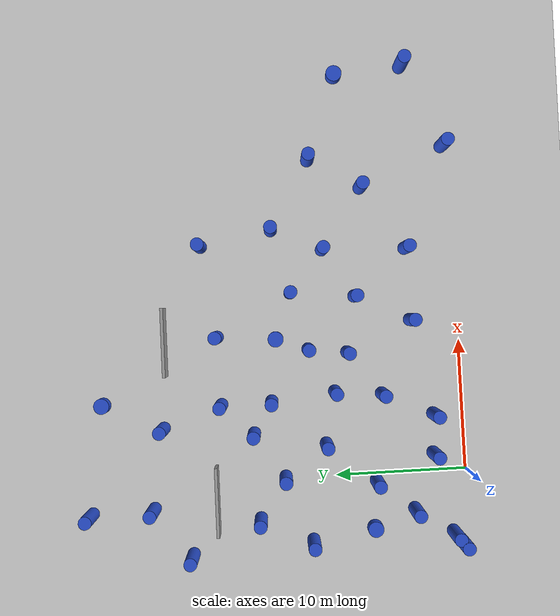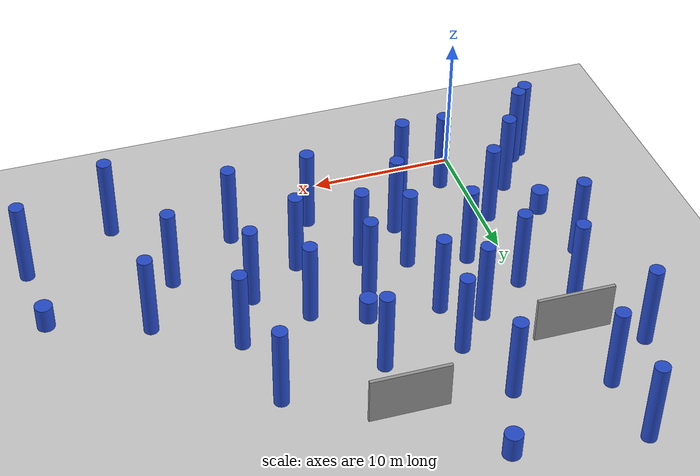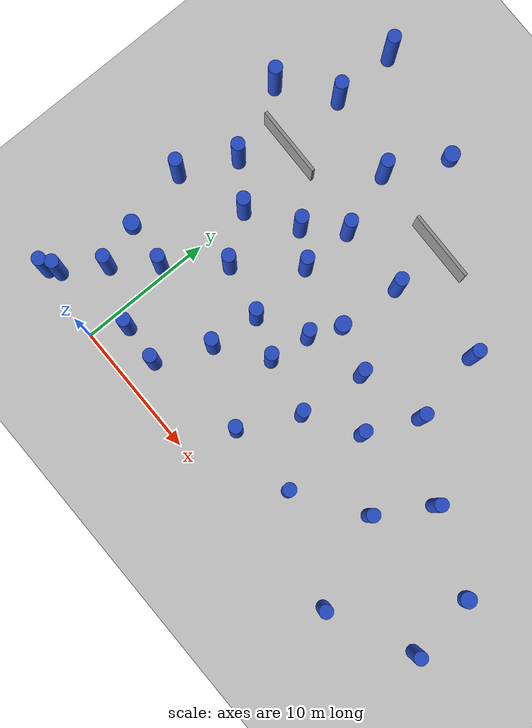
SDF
<sdf version="1.7">
 <world name="default">
  <model name="ground_plane">
   <static>1</static>
   <link name="link">
    <collision name="collision">
     <geometry><plane><normal>0 0 1</normal><size>100 100</size></plane></geometry>
     <surface><friction><ode><mu>100</mu><mu2>50</mu2></ode></friction></surface>
    </collision>
    <visual name="visual">
     <cast_shadows>0</cast_shadows>
     <geometry><plane><normal>0 0 1</normal><size>100 100</size></plane></geometry>
     <material>
      <script><uri>file://media/materials/scripts/gazebo.material</uri><name>Gazebo/Grey</name></script>
     </material>
    </visual>
   </link>
  </model>
  <model name="unit_cylinder_1">
   <static>1</static>
   <pose>30.8945 8.63353 0.9 0 -0 0.001073</pose>
   <link name="link">
    <inertial>
     <mass>1</mass>
     <inertia><ixx>0.145833</ixx><ixy>0</ixy><ixz>0</ixz><iyy>0.145833</iyy><iyz>0</iyz><izz>0.125</izz></inertia>
    </inertial>
    <collision name="collision">
     <geometry><cylinder><radius>0.6</radius><length>1.8</length></cylinder></geometry>
     <surface><contact><collide_without_contact>1</collide_without_contact></contact></surface>
    </collision>
    <visual name="visual">
     <geometry><cylinder><radius>0.6</radius><length>1.8</length></cylinder></geometry>
     <material>
      <script><name>Gazebo/Blue</name><uri>file://media/materials/scripts/gazebo.material</uri></script>
     </material>
    </visual>
    <gravity>0</gravity>
   </link>
  </model>
  <model name="unit_box_0_0_clone_0_clone_clone_0_clone_clone_clone_clone_clone_clone_0">
   <static>1</static>
   <pose>-1.35623 19.251 1.66667 -2e-06 0.000226 1.55672</pose>
   <link name="link">
    <inertial>
     <mass>1</mass>
     <inertia>
      <ixx>0.166667</ixx>
      <ixy>0</ixy>
      <ixz>0</ixz>
      <iyy>0.166667</iyy>
      <iyz>0</iyz>
      <izz>0.166667</izz>
     </inertia>
    </inertial>
    <collision name="collision">
     <geometry><box><size>0.237691 5.28913 3.33454</size></box></geometry>
     <surface><contact><collide_without_contact>1</collide_without_contact></contact></surface>
    </collision>
    <visual name="visual">
     <geometry><box><size>0.237691 5.28913 3.33454</size></box></geometry>
     <material>
      <script><name>Gazebo/Grey</name><uri>file://media/materials/scripts/gazebo.material</uri></script>
     </material>
    </visual>
    <gravity>0</gravity>
   </link>
  </model>
  <model name="unit_box_0_0_clone_0_clone_clone_0_clone_clone_clone_clone_clone_clone_2">
   <static>1</static>
   <pose>10.9902 22.7223 1.66667 -2e-06 0.000226 1.55672</pose>
   <link name="link">
    <inertial>
     <mass>1</mass>
     <inertia>
      <ixx>0.166667</ixx>
      <ixy>0</ixy>
      <ixz>0</ixz>
      <iyy>0.166667</iyy>
      <iyz>0</iyz>
      <izz>0.166667</izz>
     </inertia>
    </inertial>
    <collision name="collision">
     <geometry><box><size>0.237691 5.28913 3.33454</size></box></geometry>
     <surface><contact><collide_without_contact>1</collide_without_contact></contact></surface>
    </collision>
    <visual name="visual">
     <geometry><box><size>0.237691 5.28913 3.33454</size></box></geometry>
     <material>
      <script><name>Gazebo/Grey</name><uri>file://media/materials/scripts/gazebo.material</uri></script>
     </material>
    </visual>
    <gravity>0</gravity>
   </link>
  </model>
  <model name="unit_cylinder_0_clone_0">
   <static>1</static>
   <pose>19.2061 14.1082 3 0 -0 0.001073</pose>
   <link name="link">
    <inertial>
     <mass>1</mass>
     <inertia><ixx>0.145833</ixx><ixy>0</ixy><ixz>0</ixz><iyy>0.145833</iyy><iyz>0</iyz><izz>0.125</izz></inertia>
    </inertial>
    <collision name="collision">
     <geometry><cylinder><radius>0.5</radius><length>6</length></cylinder></geometry>
     <surface><contact><collide_without_contact>1</collide_without_contact></contact></surface>
    </collision>
    <visual name="visual">
     <geometry><cylinder><radius>0.5</radius><length>6</length></cylinder></geometry>
     <material>
      <script><name>Gazebo/Blue</name><uri>file://media/materials/scripts/gazebo.material</uri></script>
     </material>
    </visual>
    <gravity>0</gravity>
   </link>
  </model>
  <model name="unit_cylinder_0_clone_5">
   <static>1</static>
   <pose>17.29 3.83892 3 0 -0 0.001073</pose>
   <link name="link">
    <inertial>
     <mass>1</mass>
     <inertia><ixx>0.145833</ixx><ixy>0</ixy><ixz>0</ixz><iyy>0.145833</iyy><iyz>0</iyz><izz>0.125</izz></inertia>
    </inertial>
    <collision name="collision">
     <geometry><cylinder><radius>0.5</radius><length>6</length></cylinder></geometry>
     <surface><contact><collide_without_contact>1</collide_without_contact></contact></surface>
    </collision>
    <visual name="visual">
     <geometry><cylinder><radius>0.5</radius><length>6</length></cylinder></geometry>
     <material>
      <script><name>Gazebo/Blue</name><uri>file://media/materials/scripts/gazebo.material</uri></script>
     </material>
    </visual>
    <gravity>0</gravity>
   </link>
  </model>
  <model name="unit_cylinder_0_clone_15">
   <static>1</static>
   <pose>24.4702 11 3 0 -0 0.001073</pose>
   <link name="link">
    <inertial>
     <mass>1</mass>
     <inertia><ixx>0.145833</ixx><ixy>0</ixy><ixz>0</ixz><iyy>0.145833</iyy><iyz>0</iyz><izz>0.125</izz></inertia>
    </inertial>
    <collision name="collision">
     <geometry><cylinder><radius>0.5</radius><length>6</length></cylinder></geometry>
     <surface><contact><collide_without_contact>1</collide_without_contact></contact></surface>
    </collision>
    <visual name="visual">
     <geometry><cylinder><radius>0.5</radius><length>6</length></cylinder></geometry>
     <material>
      <script><name>Gazebo/Blue</name><uri>file://media/materials/scripts/gazebo.material</uri></script>
     </material>
    </visual>
    <gravity>0</gravity>
   </link>
  </model>
  <model name="unit_cylinder_0_clone_53">
   <static>1</static>
   <pose>25.011 0.609466 3 0 -0 0.001073</pose>
   <link name="link">
    <inertial>
     <mass>1</mass>
     <inertia><ixx>0.145833</ixx><ixy>0</ixy><ixz>0</ixz><iyy>0.145833</iyy><iyz>0</iyz><izz>0.125</izz></inertia>
    </inertial>
    <collision name="collision">
     <geometry><cylinder><radius>0.5</radius><length>6</length></cylinder></geometry>
     <surface><contact><collide_without_contact>1</collide_without_contact></contact></surface>
    </collision>
    <visual name="visual">
     <geometry><cylinder><radius>0.5</radius><length>6</length></cylinder></geometry>
     <material>
      <script><name>Gazebo/Blue</name><uri>file://media/materials/scripts/gazebo.material</uri></script>
     </material>
    </visual>
    <gravity>0</gravity>
   </link>
  </model>
  <model name="unit_cylinder_0_clone_56">
   <static>1</static>
   <pose>6.1738 6.18159 3 0 -0 0.001073</pose>
   <link name="link">
    <inertial>
     <mass>1</mass>
     <inertia><ixx>0.145833</ixx><ixy>0</ixy><ixz>0</ixz><iyy>0.145833</iyy><iyz>0</iyz><izz>0.125</izz></inertia>
    </inertial>
    <collision name="collision">
     <geometry><cylinder><radius>0.5</radius><length>6</length></cylinder></geometry>
     <surface><contact><collide_without_contact>1</collide_without_contact></contact></surface>
    </collision>
    <visual name="visual">
     <geometry><cylinder><radius>0.5</radius><length>6</length></cylinder></geometry>
     <material>
      <script><name>Gazebo/Blue</name><uri>file://media/materials/scripts/gazebo.material</uri></script>
     </material>
    </visual>
    <gravity>0</gravity>
   </link>
  </model>
  <model name="unit_cylinder_1_clone_3">
   <static>1</static>
   <pose>10.7828 14.1577 0.9 0 -0 0.001073</pose>
   <link name="link">
    <inertial>
     <mass>1</mass>
     <inertia><ixx>0.145833</ixx><ixy>0</ixy><ixz>0</ixz><iyy>0.145833</iyy><iyz>0</iyz><izz>0.125</izz></inertia>
    </inertial>
    <collision name="collision">
     <geometry><cylinder><radius>0.6</radius><length>1.8</length></cylinder></geometry>
     <surface><contact><collide_without_contact>1</collide_without_contact></contact></surface>
    </collision>
    <visual name="visual">
     <geometry><cylinder><radius>0.6</radius><length>1.8</length></cylinder></geometry>
     <material>
      <script><name>Gazebo/Blue</name><uri>file://media/materials/scripts/gazebo.material</uri></script>
     </material>
    </visual>
    <gravity>0</gravity>
   </link>
  </model>
  <model name="unit_cylinder_1_clone_4">
   <static>1</static>
   <pose>6.362 27.7652 0.9 0 -0 0.001073</pose>
   <link name="link">
    <inertial>
     <mass>1</mass>
     <inertia><ixx>0.145833</ixx><ixy>0</ixy><ixz>0</ixz><iyy>0.145833</iyy><iyz>0</iyz><izz>0.125</izz></inertia>
    </inertial>
    <collision name="collision">
     <geometry><cylinder><radius>0.6</radius><length>1.8</length></cylinder></geometry>
     <surface><contact><collide_without_contact>1</collide_without_contact></contact></surface>
    </collision>
    <visual name="visual">
     <geometry><cylinder><radius>0.6</radius><length>1.8</length></cylinder></geometry>
     <material>
      <script><name>Gazebo/Blue</name><uri>file://media/materials/scripts/gazebo.material</uri></script>
     </material>
    </visual>
    <gravity>0</gravity>
   </link>
  </model>
  <model name="unit_cylinder_0_clone_3_clone">
   <static>1</static>
   <pose>-5.44686 0.623967 3 0 -0 0.001073</pose>
   <link name="link">
    <inertial>
     <mass>1</mass>
     <inertia><ixx>0.145833</ixx><ixy>0</ixy><ixz>0</ixz><iyy>0.145833</iyy><iyz>0</iyz><izz>0.125</izz></inertia>
    </inertial>
    <collision name="collision">
     <geometry><cylinder><radius>0.5</radius><length>6</length></cylinder></geometry>
     <surface><contact><collide_without_contact>1</collide_without_contact></contact></surface>
    </collision>
    <visual name="visual">
     <geometry><cylinder><radius>0.5</radius><length>6</length></cylinder></geometry>
     <material>
      <script><name>Gazebo/Blue</name><uri>file://media/materials/scripts/gazebo.material</uri></script>
     </material>
    </visual>
    <gravity>0</gravity>
   </link>
  </model>
  <model name="unit_cylinder_0_clone_3_clone_0">
   <static>1</static>
   <pose>-0.521379 6.93964 3 0 -0 0.001073</pose>
   <link name="link">
    <inertial>
     <mass>1</mass>
     <inertia><ixx>0.145833</ixx><ixy>0</ixy><ixz>0</ixz><iyy>0.145833</iyy><iyz>0</iyz><izz>0.125</izz></inertia>
    </inertial>
    <collision name="collision">
     <geometry><cylinder><radius>0.5</radius><length>6</length></cylinder></geometry>
     <surface><contact><collide_without_contact>1</collide_without_contact></contact></surface>
    </collision>
    <visual name="visual">
     <geometry><cylinder><radius>0.5</radius><length>6</length></cylinder></geometry>
     <material>
      <script><name>Gazebo/Blue</name><uri>file://media/materials/scripts/gazebo.material</uri></script>
     </material>
    </visual>
    <gravity>0</gravity>
   </link>
  </model>
  <model name="unit_cylinder_0_clone_3_clone_5">
   <static>1</static>
   <pose>0.129351 13.9177 3 0 -0 0.001073</pose>
   <link name="link">
    <inertial>
     <mass>1</mass>
     <inertia><ixx>0.145833</ixx><ixy>0</ixy><ixz>0</ixz><iyy>0.145833</iyy><iyz>0</iyz><izz>0.125</izz></inertia>
    </inertial>
    <collision name="collision">
     <geometry><cylinder><radius>0.5</radius><length>6</length></cylinder></geometry>
     <surface><contact><collide_without_contact>1</collide_without_contact></contact></surface>
    </collision>
    <visual name="visual">
     <geometry><cylinder><radius>0.5</radius><length>6</length></cylinder></geometry>
     <material>
      <script><name>Gazebo/Blue</name><uri>file://media/materials/scripts/gazebo.material</uri></script>
     </material>
    </visual>
    <gravity>0</gravity>
   </link>
  </model>
  <model name="unit_cylinder_0_clone_3_clone_7">
   <static>1</static>
   <pose>17.5051 10.2438 3 0 -0 0.001073</pose>
   <link name="link">
    <inertial>
     <mass>1</mass>
     <inertia><ixx>0.145833</ixx><ixy>0</ixy><ixz>0</ixz><iyy>0.145833</iyy><iyz>0</iyz><izz>0.125</izz></inertia>
    </inertial>
    <collision name="collision">
     <geometry><cylinder><radius>0.5</radius><length>6</length></cylinder></geometry>
     <surface><contact><collide_without_contact>1</collide_without_contact></contact></surface>
    </collision>
    <visual name="visual">
     <geometry><cylinder><radius>0.5</radius><length>6</length></cylinder></geometry>
     <material>
      <script><name>Gazebo/Blue</name><uri>file://media/materials/scripts/gazebo.material</uri></script>
     </material>
    </visual>
    <gravity>0</gravity>
   </link>
  </model>
  <model name="unit_cylinder_0_clone_3_clone_8">
   <static>1</static>
   <pose>18.2052 19.6027 3 0 -0 0.001073</pose>
   <link name="link">
    <inertial>
     <mass>1</mass>
     <inertia><ixx>0.145833</ixx><ixy>0</ixy><ixz>0</ixz><iyy>0.145833</iyy><iyz>0</iyz><izz>0.125</izz></inertia>
    </inertial>
    <collision name="collision">
     <geometry><cylinder><radius>0.5</radius><length>6</length></cylinder></geometry>
     <surface><contact><collide_without_contact>1</collide_without_contact></contact></surface>
    </collision>
    <visual name="visual">
     <geometry><cylinder><radius>0.5</radius><length>6</length></cylinder></geometry>
     <material>
      <script><name>Gazebo/Blue</name><uri>file://media/materials/scripts/gazebo.material</uri></script>
     </material>
    </visual>
    <gravity>0</gravity>
   </link>
  </model>
  <model name="unit_cylinder_0_clone_3_clone_12">
   <static>1</static>
   <pose>11.172 18.673 3 0 -0 0.001073</pose>
   <link name="link">
    <inertial>
     <mass>1</mass>
     <inertia><ixx>0.145833</ixx><ixy>0</ixy><ixz>0</ixz><iyy>0.145833</iyy><iyz>0</iyz><izz>0.125</izz></inertia>
    </inertial>
    <collision name="collision">
     <geometry><cylinder><radius>0.5</radius><length>6</length></cylinder></geometry>
     <surface><contact><collide_without_contact>1</collide_without_contact></contact></surface>
    </collision>
    <visual name="visual">
     <geometry><cylinder><radius>0.5</radius><length>6</length></cylinder></geometry>
     <material>
      <script><name>Gazebo/Blue</name><uri>file://media/materials/scripts/gazebo.material</uri></script>
     </material>
    </visual>
    <gravity>0</gravity>
   </link>
  </model>
  <model name="unit_cylinder_0_clone_3_clone_13">
   <static>1</static>
   <pose>-1.8244 24.1865 3 0 -0 0.001073</pose>
   <link name="link">
    <inertial>
     <mass>1</mass>
     <inertia><ixx>0.145833</ixx><ixy>0</ixy><ixz>0</ixz><iyy>0.145833</iyy><iyz>0</iyz><izz>0.125</izz></inertia>
    </inertial>
    <collision name="collision">
     <geometry><cylinder><radius>0.5</radius><length>6</length></cylinder></geometry>
     <surface><contact><collide_without_contact>1</collide_without_contact></contact></surface>
    </collision>
    <visual name="visual">
     <geometry><cylinder><radius>0.5</radius><length>6</length></cylinder></geometry>
     <material>
      <script><name>Gazebo/Blue</name><uri>file://media/materials/scripts/gazebo.material</uri></script>
     </material>
    </visual>
    <gravity>0</gravity>
   </link>
  </model>
  <model name="unit_cylinder_1_clone_19_clone_1">
   <static>1</static>
   <pose>-4.17583 7.23667 0.9 0 -0 0.001073</pose>
   <link name="link">
    <inertial>
     <mass>1</mass>
     <inertia><ixx>0.145833</ixx><ixy>0</ixy><ixz>0</ixz><iyy>0.145833</iyy><iyz>0</iyz><izz>0.125</izz></inertia>
    </inertial>
    <collision name="collision">
     <geometry><cylinder><radius>0.6</radius><length>1.8</length></cylinder></geometry>
     <surface><contact><collide_without_contact>1</collide_without_contact></contact></surface>
    </collision>
    <visual name="visual">
     <geometry><cylinder><radius>0.6</radius><length>1.8</length></cylinder></geometry>
     <material>
      <script><name>Gazebo/Blue</name><uri>file://media/materials/scripts/gazebo.material</uri></script>
     </material>
    </visual>
    <gravity>0</gravity>
   </link>
  </model>
  <model name="unit_cylinder_0_clone_3_clone_clone_2">
   <static>1</static>
   <pose>9.50136 8.69754 3 0 -0 0.001073</pose>
   <link name="link">
    <inertial>
     <mass>1</mass>
     <inertia><ixx>0.145833</ixx><ixy>0</ixy><ixz>0</ixz><iyy>0.145833</iyy><iyz>0</iyz><izz>0.125</izz></inertia>
    </inertial>
    <collision name="collision">
     <geometry><cylinder><radius>0.5</radius><length>6</length></cylinder></geometry>
     <surface><contact><collide_without_contact>1</collide_without_contact></contact></surface>
    </collision>
    <visual name="visual">
     <geometry><cylinder><radius>0.5</radius><length>6</length></cylinder></geometry>
     <material>
      <script><name>Gazebo/Blue</name><uri>file://media/materials/scripts/gazebo.material</uri></script>
     </material>
    </visual>
    <gravity>0</gravity>
   </link>
  </model>
  <model name="unit_cylinder_0_clone_3_clone_clone_3">
   <static>1</static>
   <pose>6.0049 14.709 3 0 -0 0.001073</pose>
   <link name="link">
    <inertial>
     <mass>1</mass>
     <inertia><ixx>0.145833</ixx><ixy>0</ixy><ixz>0</ixz><iyy>0.145833</iyy><iyz>0</iyz><izz>0.125</izz></inertia>
    </inertial>
    <collision name="collision">
     <geometry><cylinder><radius>0.5</radius><length>6</length></cylinder></geometry>
     <surface><contact><collide_without_contact>1</collide_without_contact></contact></surface>
    </collision>
    <visual name="visual">
     <geometry><cylinder><radius>0.5</radius><length>6</length></cylinder></geometry>
     <material>
      <script><name>Gazebo/Blue</name><uri>file://media/materials/scripts/gazebo.material</uri></script>
     </material>
    </visual>
    <gravity>0</gravity>
   </link>
  </model>
  <model name="unit_cylinder_0_clone_3_clone_clone_6">
   <static>1</static>
   <pose>4.41585 2.29177 3 0 -0 0.001073</pose>
   <link name="link">
    <inertial>
     <mass>1</mass>
     <inertia><ixx>0.145833</ixx><ixy>0</ixy><ixz>0</ixz><iyy>0.145833</iyy><iyz>0</iyz><izz>0.125</izz></inertia>
    </inertial>
    <collision name="collision">
     <geometry><cylinder><radius>0.5</radius><length>6</length></cylinder></geometry>
     <surface><contact><collide_without_contact>1</collide_without_contact></contact></surface>
    </collision>
    <visual name="visual">
     <geometry><cylinder><radius>0.5</radius><length>6</length></cylinder></geometry>
     <material>
      <script><name>Gazebo/Blue</name><uri>file://media/materials/scripts/gazebo.material</uri></script>
     </material>
    </visual>
    <gravity>0</gravity>
   </link>
  </model>
  <model name="unit_cylinder_0_clone_3_clone_clone_7">
   <static>1</static>
   <pose>-2.84647 4.08185 3 0 -0 0.001073</pose>
   <link name="link">
    <inertial>
     <mass>1</mass>
     <inertia><ixx>0.145833</ixx><ixy>0</ixy><ixz>0</ixz><iyy>0.145833</iyy><iyz>0</iyz><izz>0.125</izz></inertia>
    </inertial>
    <collision name="collision">
     <geometry><cylinder><radius>0.5</radius><length>6</length></cylinder></geometry>
     <surface><contact><collide_without_contact>1</collide_without_contact></contact></surface>
    </collision>
    <visual name="visual">
     <geometry><cylinder><radius>0.5</radius><length>6</length></cylinder></geometry>
     <material>
      <script><name>Gazebo/Blue</name><uri>file://media/materials/scripts/gazebo.material</uri></script>
     </material>
    </visual>
    <gravity>0</gravity>
   </link>
  </model>
  <model name="unit_cylinder_0_clone_3_clone_clone_8">
   <static>1</static>
   <pose>2.52709 10.6665 3 0 -0 0.001073</pose>
   <link name="link">
    <inertial>
     <mass>1</mass>
     <inertia><ixx>0.145833</ixx><ixy>0</ixy><ixz>0</ixz><iyy>0.145833</iyy><iyz>0</iyz><izz>0.125</izz></inertia>
    </inertial>
    <collision name="collision">
     <geometry><cylinder><radius>0.5</radius><length>6</length></cylinder></geometry>
     <surface><contact><collide_without_contact>1</collide_without_contact></contact></surface>
    </collision>
    <visual name="visual">
     <geometry><cylinder><radius>0.5</radius><length>6</length></cylinder></geometry>
     <material>
      <script><name>Gazebo/Blue</name><uri>file://media/materials/scripts/gazebo.material</uri></script>
     </material>
    </visual>
    <gravity>0</gravity>
   </link>
  </model>
  <model name="unit_cylinder_0_clone_3_clone_clone_9">
   <static>1</static>
   <pose>-4.87347 12.0297 3 0 -0 0.001073</pose>
   <link name="link">
    <inertial>
     <mass>1</mass>
     <inertia><ixx>0.145833</ixx><ixy>0</ixy><ixz>0</ixz><iyy>0.145833</iyy><iyz>0</iyz><izz>0.125</izz></inertia>
    </inertial>
    <collision name="collision">
     <geometry><cylinder><radius>0.5</radius><length>6</length></cylinder></geometry>
     <surface><contact><collide_without_contact>1</collide_without_contact></contact></surface>
    </collision>
    <visual name="visual">
     <geometry><cylinder><radius>0.5</radius><length>6</length></cylinder></geometry>
     <material>
      <script><name>Gazebo/Blue</name><uri>file://media/materials/scripts/gazebo.material</uri></script>
     </material>
    </visual>
    <gravity>0</gravity>
   </link>
  </model>
  <model name="unit_cylinder_0_clone_3_clone_clone_12">
   <static>1</static>
   <pose>11.7531 3.70857 3 0 -0 0.001073</pose>
   <link name="link">
    <inertial>
     <mass>1</mass>
     <inertia><ixx>0.145833</ixx><ixy>0</ixy><ixz>0</ixz><iyy>0.145833</iyy><iyz>0</iyz><izz>0.125</izz></inertia>
    </inertial>
    <collision name="collision">
     <geometry><cylinder><radius>0.5</radius><length>6</length></cylinder></geometry>
     <surface><contact><collide_without_contact>1</collide_without_contact></contact></surface>
    </collision>
    <visual name="visual">
     <geometry><cylinder><radius>0.5</radius><length>6</length></cylinder></geometry>
     <material>
      <script><name>Gazebo/Blue</name><uri>file://media/materials/scripts/gazebo.material</uri></script>
     </material>
    </visual>
    <gravity>0</gravity>
   </link>
  </model>
  <model name="unit_cylinder_0_clone_3_clone_clone_14">
   <static>1</static>
   <pose>5.93731 18.5962 3 0 -0 0.001073</pose>
   <link name="link">
    <inertial>
     <mass>1</mass>
     <inertia><ixx>0.145833</ixx><ixy>0</ixy><ixz>0</ixz><iyy>0.145833</iyy><iyz>0</iyz><izz>0.125</izz></inertia>
    </inertial>
    <collision name="collision">
     <geometry><cylinder><radius>0.5</radius><length>6</length></cylinder></geometry>
     <surface><contact><collide_without_contact>1</collide_without_contact></contact></surface>
    </collision>
    <visual name="visual">
     <geometry><cylinder><radius>0.5</radius><length>6</length></cylinder></geometry>
     <material>
      <script><name>Gazebo/Blue</name><uri>file://media/materials/scripts/gazebo.material</uri></script>
     </material>
    </visual>
    <gravity>0</gravity>
   </link>
  </model>
  <model name="unit_cylinder_0_clone_3_clone_clone_20">
   <static>1</static>
   <pose>22.1323 7.06268 3 0 -0 0.001073</pose>
   <link name="link">
    <inertial>
     <mass>1</mass>
     <inertia><ixx>0.145833</ixx><ixy>0</ixy><ixz>0</ixz><iyy>0.145833</iyy><iyz>0</iyz><izz>0.125</izz></inertia>
    </inertial>
    <collision name="collision">
     <geometry><cylinder><radius>0.5</radius><length>6</length></cylinder></geometry>
     <surface><contact><collide_without_contact>1</collide_without_contact></contact></surface>
    </collision>
    <visual name="visual">
     <geometry><cylinder><radius>0.5</radius><length>6</length></cylinder></geometry>
     <material>
      <script><name>Gazebo/Blue</name><uri>file://media/materials/scripts/gazebo.material</uri></script>
     </material>
    </visual>
    <gravity>0</gravity>
   </link>
  </model>
  <model name="unit_cylinder_0_clone_3_clone_clone_21">
   <static>1</static>
   <pose>14.3016 12.8562 3 0 -0 0.001073</pose>
   <link name="link">
    <inertial>
     <mass>1</mass>
     <inertia><ixx>0.145833</ixx><ixy>0</ixy><ixz>0</ixz><iyy>0.145833</iyy><iyz>0</iyz><izz>0.125</izz></inertia>
    </inertial>
    <collision name="collision">
     <geometry><cylinder><radius>0.5</radius><length>6</length></cylinder></geometry>
     <surface><contact><collide_without_contact>1</collide_without_contact></contact></surface>
    </collision>
    <visual name="visual">
     <geometry><cylinder><radius>0.5</radius><length>6</length></cylinder></geometry>
     <material>
      <script><name>Gazebo/Blue</name><uri>file://media/materials/scripts/gazebo.material</uri></script>
     </material>
    </visual>
    <gravity>0</gravity>
   </link>
  </model>
  <model name="unit_cylinder_0_clone_3_clone_clone_22">
   <static>1</static>
   <pose>4.34476 23.1529 3 0 -0 0.001073</pose>
   <link name="link">
    <inertial>
     <mass>1</mass>
     <inertia><ixx>0.145833</ixx><ixy>0</ixy><ixz>0</ixz><iyy>0.145833</iyy><iyz>0</iyz><izz>0.125</izz></inertia>
    </inertial>
    <collision name="collision">
     <geometry><cylinder><radius>0.5</radius><length>6</length></cylinder></geometry>
     <surface><contact><collide_without_contact>1</collide_without_contact></contact></surface>
    </collision>
    <visual name="visual">
     <geometry><cylinder><radius>0.5</radius><length>6</length></cylinder></geometry>
     <material>
      <script><name>Gazebo/Blue</name><uri>file://media/materials/scripts/gazebo.material</uri></script>
     </material>
    </visual>
    <gravity>0</gravity>
   </link>
  </model>
  <model name="unit_cylinder_0_clone_3_clone_clone_24">
   <static>1</static>
   <pose>-2 29 3 0 -0 0.001073</pose>
   <link name="link">
    <inertial>
     <mass>1</mass>
     <inertia><ixx>0.145833</ixx><ixy>0</ixy><ixz>0</ixz><iyy>0.145833</iyy><iyz>0</iyz><izz>0.125</izz></inertia>
    </inertial>
    <collision name="collision">
     <geometry><cylinder><radius>0.5</radius><length>6</length></cylinder></geometry>
     <surface><contact><collide_without_contact>1</collide_without_contact></contact></surface>
    </collision>
    <visual name="visual">
     <geometry><cylinder><radius>0.5</radius><length>6</length></cylinder></geometry>
     <material>
      <script><name>Gazebo/Blue</name><uri>file://media/materials/scripts/gazebo.material</uri></script>
     </material>
    </visual>
    <gravity>0</gravity>
   </link>
  </model>
  <model name="unit_cylinder_0_clone_3_clone_clone_31">
   <static>1</static>
   <pose>31.3057 3.49207 3 0 -0 0.001073</pose>
   <link name="link">
    <inertial>
     <mass>1</mass>
     <inertia><ixx>0.145833</ixx><ixy>0</ixy><ixz>0</ixz><iyy>0.145833</iyy><iyz>0</iyz><izz>0.125</izz></inertia>
    </inertial>
    <collision name="collision">
     <geometry><cylinder><radius>0.5</radius><length>6</length></cylinder></geometry>
     <surface><contact><collide_without_contact>1</collide_without_contact></contact></surface>
    </collision>
    <visual name="visual">
     <geometry><cylinder><radius>0.5</radius><length>6</length></cylinder></geometry>
     <material>
      <script><name>Gazebo/Blue</name><uri>file://media/materials/scripts/gazebo.material</uri></script>
     </material>
    </visual>
    <gravity>0</gravity>
   </link>
  </model>
  <model name="unit_cylinder_0_clone_3_clone_clone_40">
   <static>1</static>
   <pose>1.39082 2.44523 3 0 -0 0.001073</pose>
   <link name="link">
    <inertial>
     <mass>1</mass>
     <inertia><ixx>0.145833</ixx><ixy>0</ixy><ixz>0</ixz><iyy>0.145833</iyy><iyz>0</iyz><izz>0.125</izz></inertia>
    </inertial>
    <collision name="collision">
     <geometry><cylinder><radius>0.5</radius><length>6</length></cylinder></geometry>
     <surface><contact><collide_without_contact>1</collide_without_contact></contact></surface>
    </collision>
    <visual name="visual">
     <geometry><cylinder><radius>0.5</radius><length>6</length></cylinder></geometry>
     <material>
      <script><name>Gazebo/Blue</name><uri>file://media/materials/scripts/gazebo.material</uri></script>
     </material>
    </visual>
    <gravity>0</gravity>
   </link>
  </model>
  <model name="unit_cylinder_0_clone_3_clone_clone_42">
   <static>1</static>
   <pose>-4.74767 1.18472 3 0 -0 0.001073</pose>
   <link name="link">
    <inertial>
     <mass>1</mass>
     <inertia><ixx>0.145833</ixx><ixy>0</ixy><ixz>0</ixz><iyy>0.145833</iyy><iyz>0</iyz><izz>0.125</izz></inertia>
    </inertial>
    <collision name="collision">
     <geometry><cylinder><radius>0.5</radius><length>6</length></cylinder></geometry>
     <surface><contact><collide_without_contact>1</collide_without_contact></contact></surface>
    </collision>
    <visual name="visual">
     <geometry><cylinder><radius>0.5</radius><length>6</length></cylinder></geometry>
     <material>
      <script><name>Gazebo/Blue</name><uri>file://media/materials/scripts/gazebo.material</uri></script>
     </material>
    </visual>
    <gravity>0</gravity>
   </link>
  </model>
  <model name="unit_cylinder_0_clone_3_clone_clone_50">
   <static>1</static>
   <pose>-3 16 3 0 -0 0.001073</pose>
   <link name="link">
    <inertial>
     <mass>1</mass>
     <inertia><ixx>0.145833</ixx><ixy>0</ixy><ixz>0</ixz><iyy>0.145833</iyy><iyz>0</iyz><izz>0.125</izz></inertia>
    </inertial>
    <collision name="collision">
     <geometry><cylinder><radius>0.5</radius><length>6</length></cylinder></geometry>
     <surface><contact><collide_without_contact>1</collide_without_contact></contact></surface>
    </collision>
    <visual name="visual">
     <geometry><cylinder><radius>0.5</radius><length>6</length></cylinder></geometry>
     <material>
      <script><name>Gazebo/Blue</name><uri>file://media/materials/scripts/gazebo.material</uri></script>
     </material>
    </visual>
    <gravity>0</gravity>
   </link>
  </model>
  <model name="unit_cylinder_0_clone_3_clone_clone_51">
   <static>1</static>
   <pose>9.88582 11.69 3 0 -0 0.001073</pose>
   <link name="link">
    <inertial>
     <mass>1</mass>
     <inertia><ixx>0.145833</ixx><ixy>0</ixy><ixz>0</ixz><iyy>0.145833</iyy><iyz>0</iyz><izz>0.125</izz></inertia>
    </inertial>
    <collision name="collision">
     <geometry><cylinder><radius>0.5</radius><length>6</length></cylinder></geometry>
     <surface><contact><collide_without_contact>1</collide_without_contact></contact></surface>
    </collision>
    <visual name="visual">
     <geometry><cylinder><radius>0.5</radius><length>6</length></cylinder></geometry>
     <material>
      <script><name>Gazebo/Blue</name><uri>file://media/materials/scripts/gazebo.material</uri></script>
     </material>
    </visual>
    <gravity>0</gravity>
   </link>
  </model>
  <model name="unit_cylinder_0_clone_3_clone_clone_52">
   <static>1</static>
   <pose>13.7974 7.91516 3 0 -0 0.001073</pose>
   <link name="link">
    <inertial>
     <mass>1</mass>
     <inertia><ixx>0.145833</ixx><ixy>0</ixy><ixz>0</ixz><iyy>0.145833</iyy><iyz>0</iyz><izz>0.125</izz></inertia>
    </inertial>
    <collision name="collision">
     <geometry><cylinder><radius>0.5</radius><length>6</length></cylinder></geometry>
     <surface><contact><collide_without_contact>1</collide_without_contact></contact></surface>
    </collision>
    <visual name="visual">
     <geometry><cylinder><radius>0.5</radius><length>6</length></cylinder></geometry>
     <material>
      <script><name>Gazebo/Blue</name><uri>file://media/materials/scripts/gazebo.material</uri></script>
     </material>
    </visual>
    <gravity>0</gravity>
   </link>
  </model>
  <model name="unit_cylinder_0_clone_3_clone_clone_56">
   <static>1</static>
   <pose>6.51717 9.80224 3 0 -0 0.001073</pose>
   <link name="link">
    <inertial>
     <mass>1</mass>
     <inertia><ixx>0.145833</ixx><ixy>0</ixy><ixz>0</ixz><iyy>0.145833</iyy><iyz>0</iyz><izz>0.125</izz></inertia>
    </inertial>
    <collision name="collision">
     <geometry><cylinder><radius>0.5</radius><length>6</length></cylinder></geometry>
     <surface><contact><collide_without_contact>1</collide_without_contact></contact></surface>
    </collision>
    <visual name="visual">
     <geometry><cylinder><radius>0.5</radius><length>6</length></cylinder></geometry>
     <material>
      <script><name>Gazebo/Blue</name><uri>file://media/materials/scripts/gazebo.material</uri></script>
     </material>
    </visual>
    <gravity>0</gravity>
   </link>
  </model>
  <model name="unit_cylinder_0_clone_3_clone_clone_57">
   <static>1</static>
   <pose>3.60837 16.182 3 0 -0 0.001073</pose>
   <link name="link">
    <inertial>
     <mass>1</mass>
     <inertia><ixx>0.145833</ixx><ixy>0</ixy><ixz>0</ixz><iyy>0.145833</iyy><iyz>0</iyz><izz>0.125</izz></inertia>
    </inertial>
    <collision name="collision">
     <geometry><cylinder><radius>0.5</radius><length>6</length></cylinder></geometry>
     <surface><contact><collide_without_contact>1</collide_without_contact></contact></surface>
    </collision>
    <visual name="visual">
     <geometry><cylinder><radius>0.5</radius><length>6</length></cylinder></geometry>
     <material>
      <script><name>Gazebo/Blue</name><uri>file://media/materials/scripts/gazebo.material</uri></script>
     </material>
    </visual>
    <gravity>0</gravity>
   </link>
  </model>
  <model name="unit_cylinder_0_clone_3_clone_clone_58">
   <static>1</static>
   <pose>-5.49517 21.3508 3 0 -0 0.001073</pose>
   <link name="link">
    <inertial>
     <mass>1</mass>
     <inertia><ixx>0.145833</ixx><ixy>0</ixy><ixz>0</ixz><iyy>0.145833</iyy><iyz>0</iyz><izz>0.125</izz></inertia>
    </inertial>
    <collision name="collision">
     <geometry><cylinder><radius>0.5</radius><length>6</length></cylinder></geometry>
     <surface><contact><collide_without_contact>1</collide_without_contact></contact></surface>
    </collision>
    <visual name="visual">
     <geometry><cylinder><radius>0.5</radius><length>6</length></cylinder></geometry>
     <material>
      <script><name>Gazebo/Blue</name><uri>file://media/materials/scripts/gazebo.material</uri></script>
     </material>
    </visual>
    <gravity>0</gravity>
   </link>
  </model>
 </world>
</sdf>
